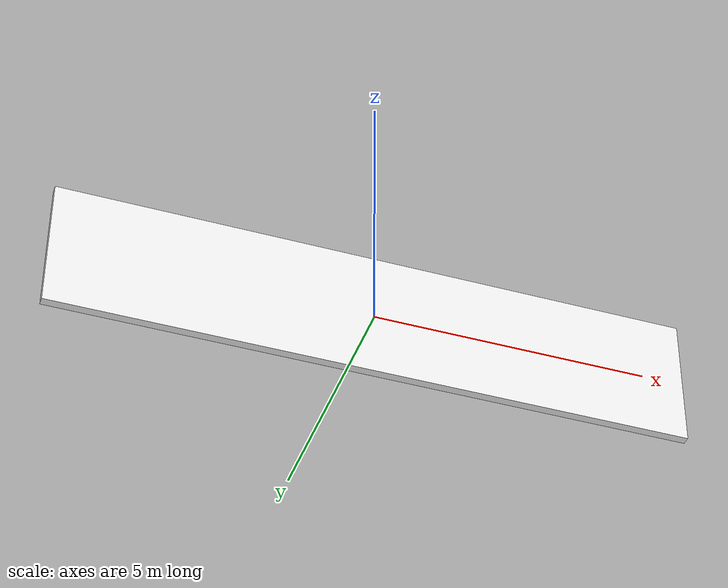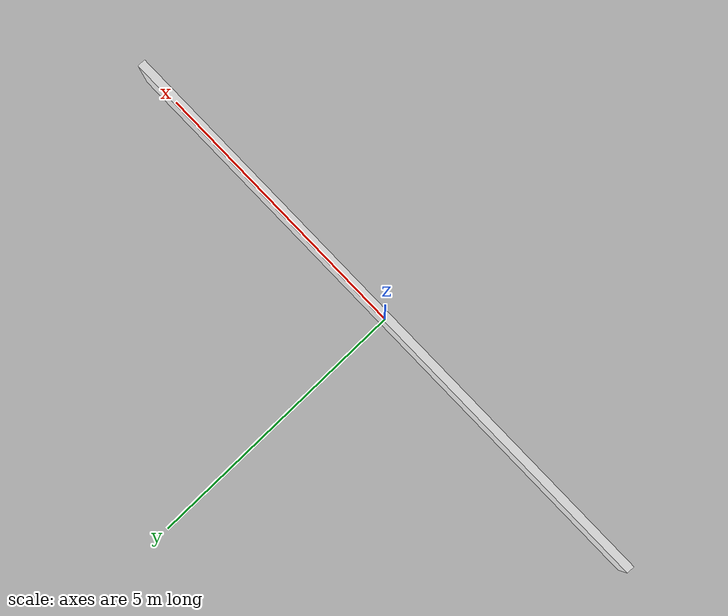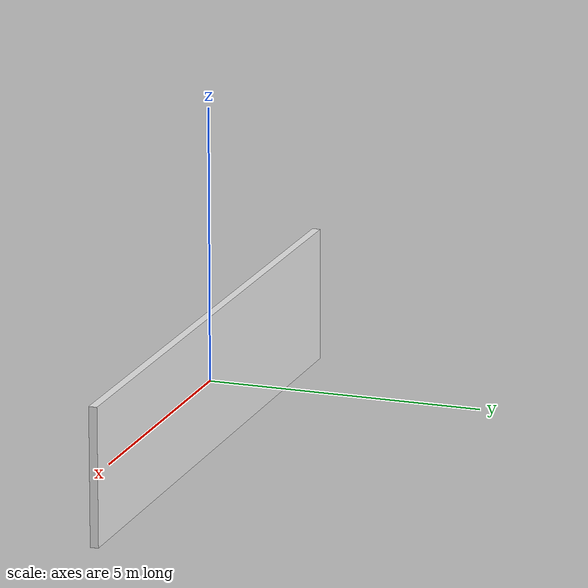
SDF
<?xml version='1.0'?>
<sdf version='1.6'>
  <model name='office_env_w2'>
    <pose frame=''>0 0 0 0 0 0</pose>
    <link name='Wall_10'>
      <pose frame=''>0 0 0 0 0 0</pose>
      <visual name='Wall_10_Visual_0'>
        <pose frame=''>0 0 0 0 -0 0</pose>
        <geometry>
          <box>
            <size>11.466 0.15 2.5</size>
          </box>
        </geometry>
        	<material>
          <script>
            <uri>model://office_env_w/materials/scripts</uri>
            <uri>model://office_env_w/materials/textures</uri>
            <name>wall_white</name>
          </script>
        </material>
        <meta>
          <layer>0</layer>
        </meta>
      </visual>
      <collision name='Wall_10_Collision_0'>
        <geometry>
          <box>
            <size>11.466 0.15 2.5</size>
          </box>
        </geometry>
        <pose frame=''>0 0 0 0 -0 0</pose>
      </collision>
    </link>
    <static>1</static>
  </model>
</sdf>
